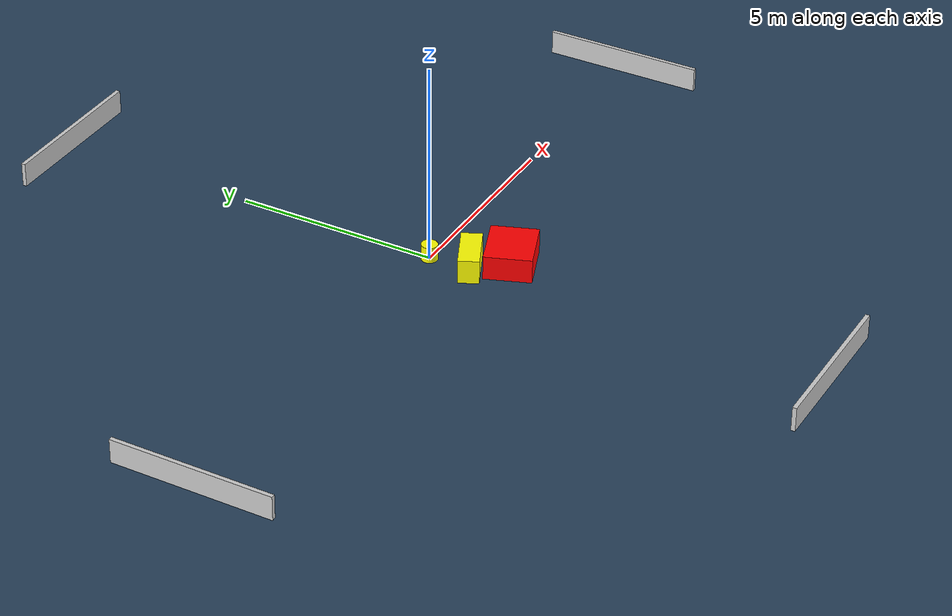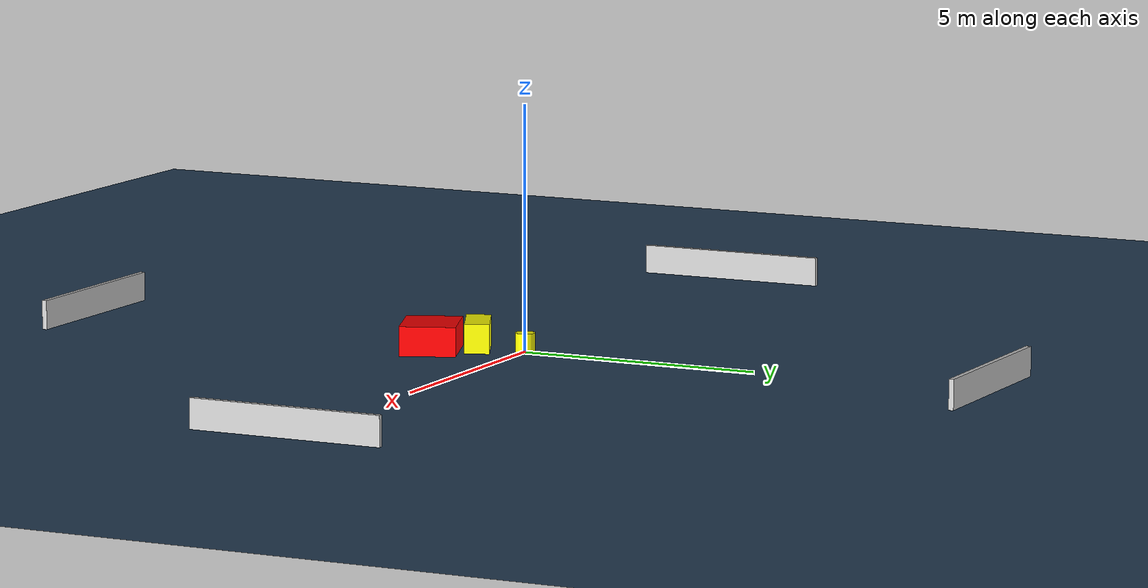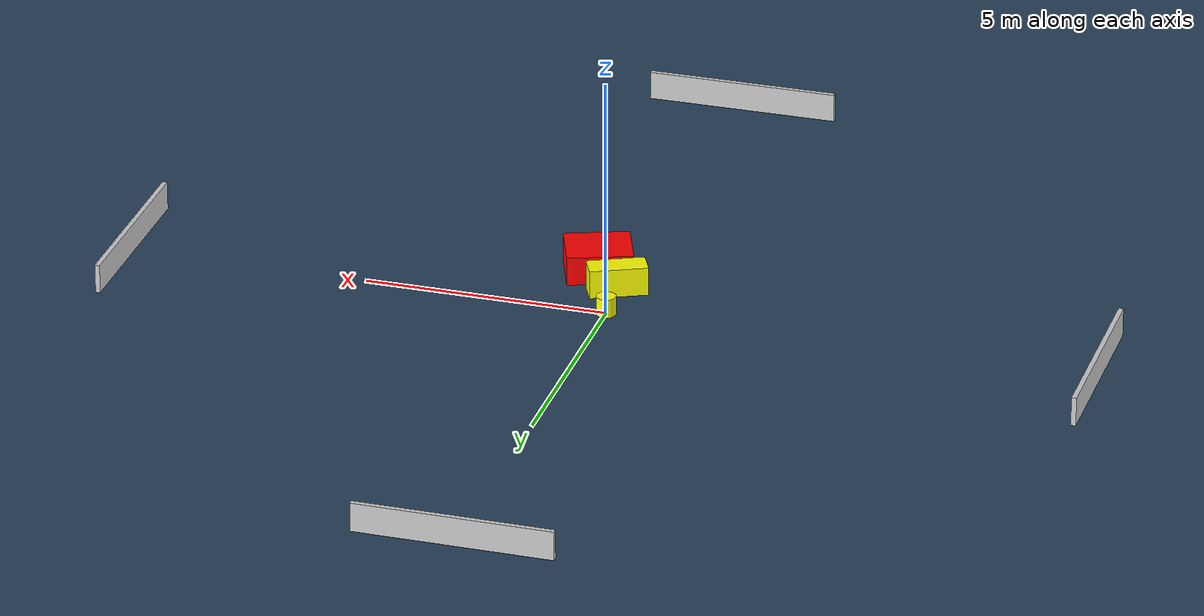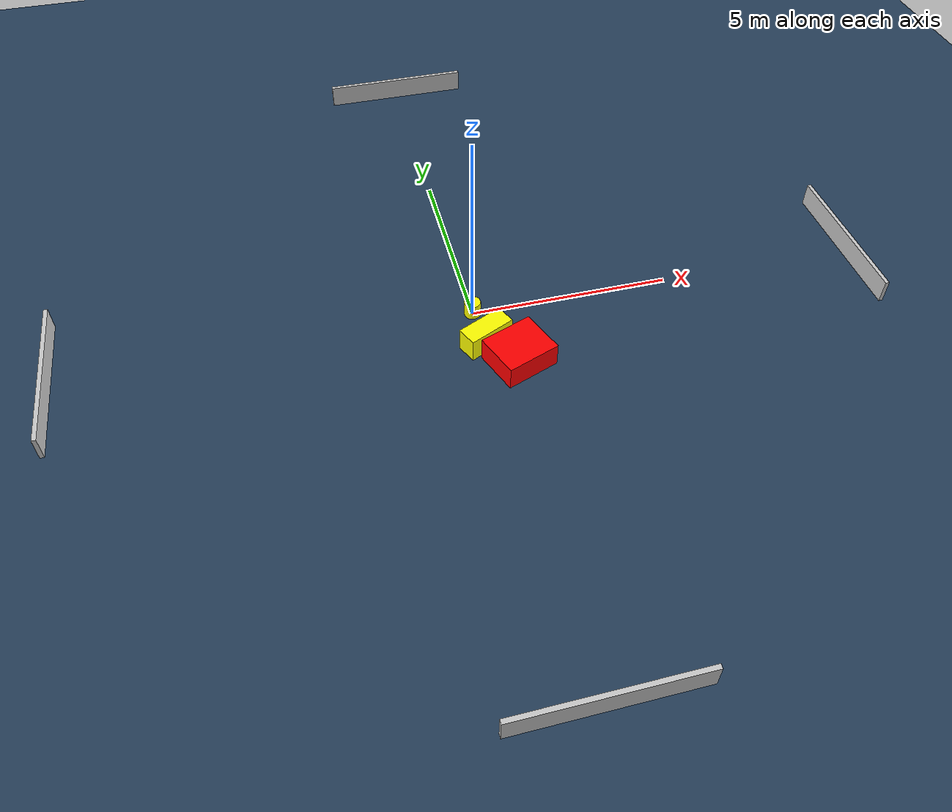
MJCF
<?xml version="1.0" ?>
<mujoco model="generated_environment">
  <option timestep="0.01" integrator="RK4" cone="elliptic"/>
  <default>
    <geom density="1"/>
  </default>
  <asset>
    <texture builtin="gradient" height="3072" name="skybox" rgb1="0.3 0.5 0.7" rgb2="0 0 0" type="skybox" width="512"/>
    <texture builtin="checker" height="300" name="groundplane" rgb1="0.2 0.3 0.4" rgb2="0.1 0.2 0.3" type="2d" width="300"/>
    <material name="groundplane" reflectance="0.2" texrepeat="5 5" texture="groundplane"/>
  </asset>
  <worldbody>
    <light dir="0 0 -1" directional="true" pos="0 0 1.5"/>
    <geom condim="3" friction="0.5 0.005 0.001" material="groundplane" name="floor" pos="0 0 0" size="0 0 0.05" type="plane"/>
    <body name="walls">
      <geom name="wall_1" condim="4" pos="-10.0 0.0 0.3" rgba="0.800000011920929 0.800000011920929 0.800000011920929 1.0" size="0.05 2.0 0.3" type="box"/>
      <geom name="wall_2" condim="4" pos="10.0 0.0 0.3" rgba="0.800000011920929 0.800000011920929 0.800000011920929 1.0" size="0.05 2.0 0.3" type="box"/>
      <geom name="wall_3" condim="4" pos="0.0 -10.0 0.3" rgba="0.800000011920929 0.800000011920929 0.800000011920929 1.0" size="2.0 0.05 0.3" type="box"/>
      <geom name="wall_4" condim="4" pos="0.0 10.0 0.3" rgba="0.800000011920929 0.800000011920929 0.800000011920929 1.0" size="2.0 0.05 0.3" type="box"/>
    </body>
    <body name="robot">
      <joint name="joint_x" type="slide" pos="0 0 0" axis="1 0 0"/>
      <joint name="joint_y" type="slide" pos="0 0 0" axis="0 1 0"/>
      <geom name="robot" type="cylinder" pos="0.0 0.0 0.2" size="0.2 0.2 0.0" mass="5.0" friction="1.0 0.005 0.0001" condim="4" rgba="1.0 1.0 0.0 1.0"/>
    </body>
    <body name="obstacle_1_movable">
      <geom name="obstacle_1_movable" condim="4" pos="0.07642814693625628 -1.0251398614874911 0.3" euler="0 0 114.93617402361309" friction="0.0 0.005 0.001" rgba="1.0 1.0 0.0 1.0" size="0.25336332877318724 0.5959989869261402 0.3" type="box" mass="0.1"/>
      <joint type="free"/>
    </body>
    <body name="obstacle_2_static">
      <geom name="obstacle_2_static" condim="4" pos="0.6909556856729892 -1.7660085358692328 0.3" euler="0 0 290.71750040787754" friction="0.0 0.005 0.001" rgba="1.0 0.0 0.0 1.0" size="0.5701088582153311 0.675269873004503 0.3" type="box"/>
    </body>
  </worldbody>
  <actuator>
    <motor name="actuator_x" joint="joint_x" gear="1" ctrlrange="-1 1"/>
    <motor name="actuator_y" joint="joint_y" gear="1" ctrlrange="-1 1"/>
  </actuator>
</mujoco>
